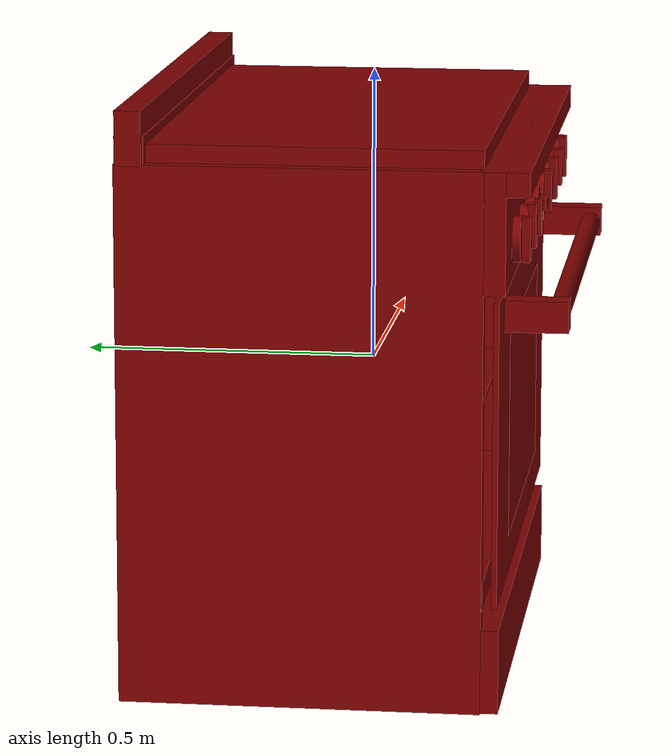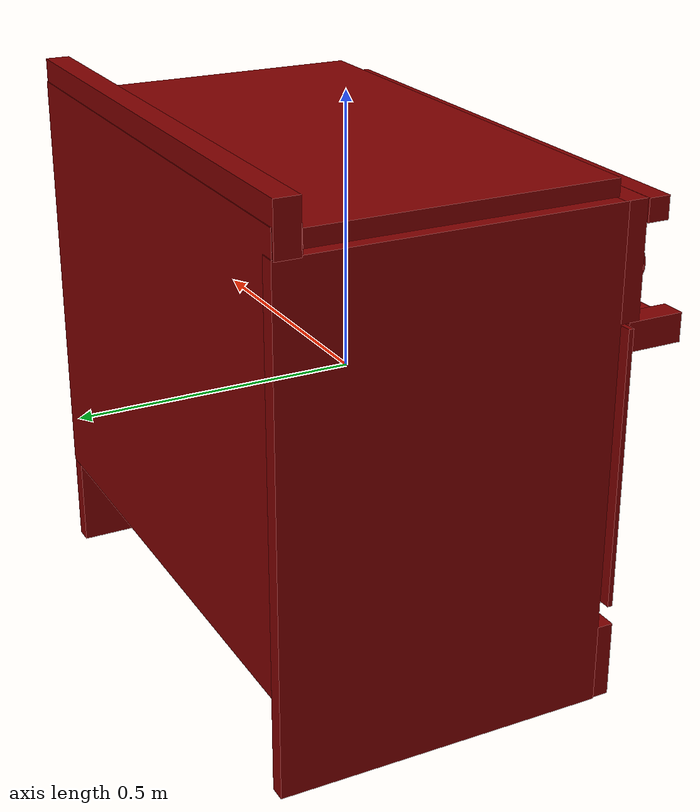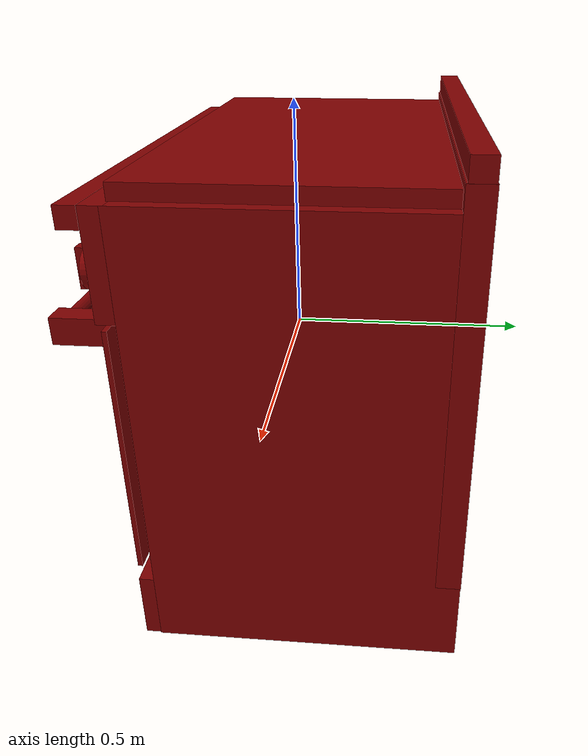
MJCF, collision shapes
<?xml version='1.0' encoding='UTF-8'?>
<mujoco model="model">
  <option timestep="0.002" gravity="0.0 0.0 -9.81"/>
  <compiler angle="radian"/>
  <asset>
    <mesh file="visuals/door.obj" name="door_vis"/>
    <mesh file="visuals/door_Clear.obj" name="door_Clear_vis"/>
    <mesh file="visuals/knob_front_center.obj" name="knob_front_center_vis"/>
    <mesh file="visuals/knob_front_left.obj" name="knob_front_left_vis"/>
    <mesh file="visuals/knob_front_right.obj" name="knob_front_right_vis"/>
    <mesh file="visuals/knob_rear_center.obj" name="knob_rear_center_vis"/>
    <mesh file="visuals/knob_rear_left.obj" name="knob_rear_left_vis"/>
    <mesh file="visuals/knob_rear_right.obj" name="knob_rear_right_vis"/>
    <mesh file="visuals/knob_temp.obj" name="knob_temp_vis"/>
    <mesh file="visuals/knob_time.obj" name="knob_time_vis"/>
    <mesh file="visuals/rack0.obj" name="rack0_vis"/>
    <mesh file="visuals/Body001.obj" name="Body001_vis"/>
    <texture file="visuals/T_BC001.png" name="Body001_material" type="2d"/>
    <material name="Body001_material" rgba="1 1 1 1.0" texture="Body001_material" shininess="0.4472135901451111" specular="1"/>
    <texture file="visuals/T_BC001.png" name="door_material" type="2d"/>
    <material name="door_material" rgba="1 1 1 1.0" texture="door_material" shininess="0.4472135901451111" specular="1"/>
    <texture file="visuals/T_BC001.png" name="door_Clear_material" type="2d"/>
    <material name="door_Clear_material" rgba="1 1 1 0.8" texture="door_Clear_material" shininess="0.4472135901451111" specular="1"/>
    <texture file="visuals/T_BC001.png" name="knob_front_center_material" type="2d"/>
    <material name="knob_front_center_material" rgba="1 1 1 1.0" texture="knob_front_center_material" shininess="0.4472135901451111" specular="1"/>
    <texture file="visuals/T_BC001.png" name="knob_front_left_material" type="2d"/>
    <material name="knob_front_left_material" rgba="1 1 1 1.0" texture="knob_front_left_material" shininess="0.4472135901451111" specular="1"/>
    <texture file="visuals/T_BC001.png" name="knob_front_right_material" type="2d"/>
    <material name="knob_front_right_material" rgba="1 1 1 1.0" texture="knob_front_right_material" shininess="0.4472135901451111" specular="1"/>
    <texture file="visuals/T_BC001.png" name="knob_rear_center_material" type="2d"/>
    <material name="knob_rear_center_material" rgba="1 1 1 1.0" texture="knob_rear_center_material" shininess="0.4472135901451111" specular="1"/>
    <texture file="visuals/T_BC001.png" name="knob_rear_left_material" type="2d"/>
    <material name="knob_rear_left_material" rgba="1 1 1 1.0" texture="knob_rear_left_material" shininess="0.4472135901451111" specular="1"/>
    <texture file="visuals/T_BC001.png" name="knob_rear_right_material" type="2d"/>
    <material name="knob_rear_right_material" rgba="1 1 1 1.0" texture="knob_rear_right_material" shininess="0.4472135901451111" specular="1"/>
    <texture file="visuals/T_BC001.png" name="knob_temp_material" type="2d"/>
    <material name="knob_temp_material" rgba="1 1 1 1.0" texture="knob_temp_material" shininess="0.4472135901451111" specular="1"/>
    <texture file="visuals/T_BC001.png" name="knob_time_material" type="2d"/>
    <material name="knob_time_material" rgba="1 1 1 1.0" texture="knob_time_material" shininess="0.4472135901451111" specular="1"/>
    <texture file="visuals/T_BC001.png" name="rack0_material" type="2d"/>
    <material name="rack0_material" rgba="1 1 1 1.0" texture="rack0_material" shininess="0.4472135901451111" specular="1"/>
  </asset>
  <default>
    <default class="visual">
      <geom conaffinity="0" contype="0" group="1" type="mesh"/>
    </default>
    <default class="collision">
      <geom group="0" rgba="0.5 0 0 0.5"/>
    </default>
    <default class="spawn">
      <geom group="0" rgba="1 1 1 0.5" contype="0" conaffinity="0"/>
      <site group="0" rgba="1 1 1 0.5"/>
    </default>
    <default class="region">
      <geom group="1" conaffinity="0" contype="0" rgba="0 1 0 0"/>
    </default>
  </default>
  <worldbody>
    <body>
      <body name="object">
        <geom mesh="Body001_vis" type="mesh" solimp="0.998 0.998 0.001" solref="0.001 1" friction="0.95 0.3 0.1" class="visual" material="Body001_material"/>
        <geom class="collision" type="box" pos="-0.00000040 0.06166940 -0.29818911" size="0.4734897017478943 0.292936235666275 0.02238655835390091" quat="1.0 0.0 0.0 0.0"/>
        <geom class="collision" type="box" pos="0.00182310 0.04703836 0.42210721" size="0.4634745717048645 0.2765425145626068 0.015197087079286575" quat="1.0 0.0 0.0 0.0"/>
        <geom class="collision" type="box" pos="-0.47135989 0.06774583 -0.04178975" size="0.014360162429511547 0.299012690782547 0.44883787631988525" quat="1.0 0.0 0.0 0.0"/>
        <geom class="collision" type="box" pos="0.00424909 0.34139909 0.06580656" size="0.4881504774093628 0.02380935288965702 0.3867793381214142" quat="1.0 0.0 0.0 0.0"/>
        <geom class="collision" type="box" pos="0.47593321 0.06655676 -0.04179010" size="0.016268758103251457 0.29792290925979614 0.4488382935523987" quat="1.0 0.0 0.0 0.0"/>
        <geom class="collision" type="box" pos="0.00321507 -0.21997534 -0.41791446" size="0.4885868430137634 0.04063500836491585 0.0703786239027977" quat="1.0 0.0 0.0 0.0"/>
        <geom class="collision" type="box" pos="0.00160956 0.34239675 0.44950013" size="0.49018722772598267 0.021507272496819496 0.04477667808532715" quat="1.0 0.0 0.0 0.0"/>
        <geom class="collision" type="box" pos="0.00321475 -0.24538921 0.30645161" size="0.48858678340911865 0.020799772813916206 0.10059786587953568" quat="1.0 0.0 0.0 0.0"/>
        <geom class="collision" type="box" pos="0.45716159 0.05411239 -0.09324733" size="0.014702280052006245 0.2272758036851883 0.013303576037287712" quat="1.0 0.0 0.0 0.0"/>
        <geom class="collision" type="box" pos="-0.44746213 0.05411239 -0.09324690" size="0.014702274464070797 0.2272758036851883 0.013303573243319988" quat="1.0 0.0 0.0 0.0"/>
        <geom class="collision" type="box" pos="-0.15331800 0.05174396 0.28792145" size="0.014702167361974716 0.2776675522327423 0.08096408098936081" quat="1.0 0.0 0.0 0.0"/>
        <geom class="collision" type="box" pos="0.00212803 -0.28573813 0.38707282" size="0.49051928520202637 0.019058873876929283 0.01997530832886696" quat="1.0 0.0 0.0 0.0"/>
        <geom class="collision" type="box" pos="0.16210516 0.05174396 0.28792145" size="0.01470217201858759 0.2776676118373871 0.08096402138471603" quat="1.0 0.0 0.0 0.0"/>
        <geom class="collision" type="box" pos="0.00321507 -0.19809811 -0.33490176" size="0.4885868430137634 0.018757784739136696 0.050876080989837646" quat="1.0 0.0 0.0 0.0"/>
        <body name="door">
          <joint axis="1.0 0.0 0.0" pos="0.00227608 -0.26381160 -0.33662448" limited="true" name="door_joint" range="0.0 1.5707963267948966" type="hinge" damping="1" frictionloss="1" armature=".01" stiffness="0.5" springref="-1"/>
          <geom mesh="door_vis" type="mesh" solimp="0.998 0.998 0.001" solref="0.001 1" friction="0.95 0.3 0.1" class="visual" material="door_material"/>
          <geom class="collision" type="box" pos="0.00362716 -0.25250636 -0.05812797" size="0.48967069387435913 0.004617785569280386 0.25291186571121216" quat="1.0 0.0 0.0 0.0" name="door_main"/>
          <geom class="collision" type="cylinder" pos="-0.00751982 -0.34869362 0.16923814" size="0.01760648936033249 0.41315340995788574" quat="0.7071068286895752 -0.0 0.7071067690849304 0.0" name="door_handle_main"/>
          <geom class="collision" type="box" pos="-0.44409688 -0.31524618 0.17068547" size="0.021696677431464195 0.051635123789310455 0.025740765035152435" quat="1.0 0.0 0.0 0.0"/>
          <geom class="collision" type="box" pos="0.43017979 -0.31524618 0.17068547" size="0.021696677431464195 0.051635123789310455 0.02574075199663639" quat="1.0 0.0 0.0 0.0"/>
          <geom class="collision" type="box" pos="0.00088766 -0.25980352 -0.06314106" size="0.3011172413825989 0.0008068492752499878 0.17353901267051697" quat="1.0 0.0 0.0 0.0"/>
          <body name="door_Clear">
            <geom mesh="door_Clear_vis" type="mesh" solimp="0.998 0.998 0.001" solref="0.001 1" friction="0.95 0.3 0.1" class="visual" material="door_Clear_material"/>
            <geom class="collision" type="box" pos="0.00088766 -0.25980352 -0.06314106" size="0.3011172413825989 0.0008068492752499878 0.17353901267051697" quat="1.0 0.0 0.0 0.0"/>
          </body>
        </body>
        <body name="knob_front_center">
          <joint axis="0.0 -1.0 0.0" pos="0.06342950 -0.27953707 0.28503548" limited="true" name="knob_front_center_joint" range="0.0 3.141592653589793" type="hinge" damping="0.05" frictionloss="0.75" armature="1"/>
          <geom mesh="knob_front_center_vis" type="mesh" solimp="0.998 0.998 0.001" solref="0.001 1" friction="0.95 0.3 0.1" class="visual" material="knob_front_center_material"/>
          <geom class="collision" type="cylinder" pos="0.06347358 -0.28137149 0.28509783" size="0.03594965115189552 0.006550677120685577" quat="0.7071067094802856 0.70710688829422 0.0 0.0" friction="100 0.5 0.01"/>
          <geom class="collision" type="box" pos="0.06307870 -0.29380001 0.28588961" size="0.03639558330178261 0.008072574622929096 0.01135251298546791" quat="0.7071068286895752 -0.0 0.7071067690849304 0.0" name="knob_front_center_main" friction="100 0.5 0.01"/>
        </body>
        <body name="knob_front_left">
          <joint axis="0.0 -1.0 0.0" pos="-0.42560022 -0.28206064 0.28954061" limited="true" name="knob_front_left_joint" range="0.0 3.141592653589793" type="hinge" damping="0.05" frictionloss="0.75" armature="1"/>
          <geom mesh="knob_front_left_vis" type="mesh" solimp="0.998 0.998 0.001" solref="0.001 1" friction="0.95 0.3 0.1" class="visual" material="knob_front_left_material"/>
          <geom class="collision" type="cylinder" pos="-0.42632811 -0.28058203 0.28974237" size="0.03757666423916817 0.006550677120685577" quat="0.7071067094802856 0.70710688829422 0.0 0.0" friction="100 0.5 0.01"/>
          <geom class="collision" type="box" pos="-0.42600693 -0.29380001 0.28993346" size="0.03639554977416992 0.008072574622929096 0.009832723066210747" quat="0.7071068286895752 -0.0 0.7071067690849304 0.0" name="knob_front_left_main" friction="100 0.5 0.01"/>
        </body>
        <body name="knob_front_right">
          <joint axis="0.0 -1.0 0.0" pos="0.43484201 -0.28206064 0.28578045" limited="true" name="knob_front_right_joint" range="0.0 3.141592653589793" type="hinge" damping="0.05" frictionloss="0.75" armature="1"/>
          <geom mesh="knob_front_right_vis" type="mesh" solimp="0.998 0.998 0.001" solref="0.001 1" friction="0.95 0.3 0.1" class="visual" material="knob_front_right_material"/>
          <geom class="collision" type="cylinder" pos="0.43485032 -0.28142048 0.28454049" size="0.03655795007944107 0.006550677120685577" quat="0.7071067094802856 0.70710688829422 0.0 0.0" friction="100 0.5 0.01"/>
          <geom class="collision" type="box" pos="0.43468447 -0.29380001 0.28633105" size="0.03639554977416992 0.008072574622929096 0.012125452049076557" quat="0.7071068286895752 -0.0 0.7071067690849304 0.0" name="knob_front_right_main" friction="100 0.5 0.01"/>
        </body>
        <body name="knob_rear_center">
          <joint axis="0.0 -1.0 0.0" pos="0.18854211 -0.28206064 0.28544595" limited="true" name="knob_rear_center_joint" range="0.0 3.141592653589793" type="hinge" damping="0.05" frictionloss="0.75" armature="1"/>
          <geom mesh="knob_rear_center_vis" type="mesh" solimp="0.998 0.998 0.001" solref="0.001 1" friction="0.95 0.3 0.1" class="visual" material="knob_rear_center_material"/>
          <geom class="collision" type="cylinder" pos="0.18838505 -0.28066070 0.28553744" size="0.03566603362560272 0.006550677120685577" quat="0.7071067094802856 0.70710688829422 0.0 0.0" friction="100 0.5 0.01"/>
          <geom class="collision" type="box" pos="0.18841310 -0.29380001 0.28685920" size="0.03639557212591171 0.008072574622929096 0.011259686201810837" quat="0.7071068286895752 -0.0 0.7071067690849304 0.0" name="knob_rear_center_main" friction="100 0.5 0.01"/>
        </body>
        <body name="knob_rear_left">
          <joint axis="0.0 -1.0 0.0" pos="-0.29852946 -0.28206064 0.28954061" limited="true" name="knob_rear_left_joint" range="0.0 3.141592653589793" type="hinge" damping="0.05" frictionloss="0.75" armature="1"/>
          <geom mesh="knob_rear_left_vis" type="mesh" solimp="0.998 0.998 0.001" solref="0.001 1" friction="0.95 0.3 0.1" class="visual" material="knob_rear_left_material"/>
          <geom class="collision" type="cylinder" pos="-0.29863776 -0.28147294 0.28974237" size="0.03489376977086067 0.006550677120685577" quat="0.7071067094802856 0.70710688829422 0.0 0.0" friction="100 0.5 0.01"/>
          <geom class="collision" type="box" pos="-0.29855199 -0.29380001 0.28915118" size="0.03639554977416992 0.008072574622929096 0.010995949618518353" quat="0.7071068286895752 -0.0 0.7071067690849304 0.0" name="knob_rear_left_main" friction="100 0.5 0.01"/>
        </body>
        <body name="knob_rear_right">
          <joint axis="0.0 -1.0 0.0" pos="0.31234227 -0.28206064 0.28578045" limited="true" name="knob_rear_right_joint" range="0.0 3.141592653589793" type="hinge" damping="0.05" frictionloss="0.75" armature="1"/>
          <geom mesh="knob_rear_right_vis" type="mesh" solimp="0.998 0.998 0.001" solref="0.001 1" friction="0.95 0.3 0.1" class="visual" material="knob_rear_right_material"/>
          <geom class="collision" type="cylinder" pos="0.31246121 -0.28107949 0.28556227" size="0.03535214811563492 0.006550677120685577" quat="0.7071067094802856 0.70710688829422 0.0 0.0" friction="100 0.5 0.01"/>
          <geom class="collision" type="box" pos="0.31206973 -0.29380001 0.28633474" size="0.032991424202919006 0.008072574622929096 0.011654136702418327" quat="0.7071068286895752 -0.0 0.7071067690849304 0.0" name="knob_rear_right_main" friction="100 0.5 0.01"/>
        </body>
        <body name="knob_temp">
          <joint axis="0.0 1.0 0.0" pos="-0.05947402 -0.27953710 0.28436707" limited="true" name="knob_temp_joint" range="0.0 3.2288591161895095" type="hinge" damping="0.05" frictionloss="0.75" armature="1"/>
          <geom mesh="knob_temp_vis" type="mesh" solimp="0.998 0.998 0.001" solref="0.001 1" friction="0.95 0.3 0.1" class="visual" material="knob_temp_material"/>
          <geom class="collision" type="cylinder" pos="-0.05983960 -0.28071035 0.28406014" size="0.03162483498454094 0.006550677120685577" quat="0.7071067094802856 0.70710688829422 0.0 0.0" friction="100 0.5 0.01"/>
          <geom class="collision" type="box" pos="-0.05976460 -0.29547717 0.28521480" size="0.00951886922121048 0.006395428441464901 0.030238952487707138" quat="0.7071068286895752 -0.0 0.7071067690849304 0.0" name="knob_temp_main" friction="100 0.5 0.01"/>
        </body>
        <body name="knob_time">
          <joint axis="0.0 1.0 0.0" pos="-0.18080817 -0.27953710 0.28419771" limited="true" name="knob_time_joint" range="0.0 4.101523742186674" type="hinge" damping="0.05" frictionloss="0.75" armature="1"/>
          <geom mesh="knob_time_vis" type="mesh" solimp="0.998 0.998 0.001" solref="0.001 1" friction="0.95 0.3 0.1" class="visual" material="knob_time_material"/>
          <geom class="collision" type="cylinder" pos="-0.18082908 -0.28160621 0.28404235" size="0.031847357749938965 0.006550677120685577" quat="0.7071067094802856 0.70710688829422 0.0 0.0" friction="100 0.5 0.01"/>
          <geom class="collision" type="box" pos="-0.18159474 -0.29547717 0.28360193" size="0.030238941311836243 0.006395428441464901 0.009580874815583229" quat="0.7071068286895752 -0.0 0.7071067690849304 0.0" name="knob_time_main" friction="100 0.5 0.01"/>
        </body>
        <body name="rack0">
          <geom class="region" name="reg_rack0" type="box" pos="0.004817385000000007 0.01540701500000001 0.06528439500000001" size="0.436020625 0.201939245 0.13994182500000002"/>
          <joint axis="0.0 -1.0 0.0" pos="0.00378870 0.01546801 -0.07941599" limited="true" name="rack0_joint" range="0.0 0.35" type="slide" damping="1" frictionloss="1" armature=".01" stiffness="0.05"/>
          <geom mesh="rack0_vis" type="mesh" solimp="0.998 0.998 0.001" solref="0.001 1" friction="0.95 0.3 0.1" class="visual" material="rack0_material"/>
          <geom class="collision" type="box" pos="0.00471125 0.01496669 -0.07934826" size="0.4363490641117096 0.20542235672473907 0.0034588007256388664" quat="1.0 0.0 0.0 0.0"/>
        </body>
        <site type="cylinder" rgba="0.3 0.4 1 0.5" size="0.07348936051130295 0.0148638766258955" pos="0.00517109 -0.08416893 0.41500439" name="burner_on_front_center"/>
        <site type="cylinder" rgba="0.3 0.4 1 0.5" size="0.04229027032852173 0.014863877557218075" pos="-0.31377168 -0.08421256 0.41500439" name="burner_on_front_left"/>
        <site type="cylinder" rgba="0.3 0.4 1 0.5" size="0.0517921969294548 0.014863877557218075" pos="0.31551491 -0.08408846 0.41500439" name="burner_on_front_right"/>
        <site type="cylinder" rgba="0.3 0.4 1 0.5" size="0.08612119406461716 0.0148638766258955" pos="0.00511148 0.17948052 0.41500439" name="burner_on_rear_center"/>
        <site type="cylinder" rgba="0.3 0.4 1 0.5" size="0.052564289420843124 0.0148638766258955" pos="-0.31381459 0.17946149 0.41500439" name="burner_on_rear_left"/>
        <site type="cylinder" rgba="0.3 0.4 1 0.5" size="0.040556829422712326 0.0148638766258955" pos="0.31559686 0.17950855 0.41500439" name="burner_on_rear_right"/>
        <geom class="region" name="reg_int" type="box" pos="0.004777759999999992 0.04371992000000001 -0.03309537500000001" size="0.43333933 0.26959392 0.23813325500000002"/>
        <site type="cylinder" rgba="0.5 0 0 0" size="0.07348936051130295 4.999999873689376e-05" pos="0.00517109 -0.08416893 0.43735348" name="burner_front_center_place_site"/>
        <site type="cylinder" rgba="0.5 0 0 0" size="0.04229027032852173 4.999999873689376e-05" pos="-0.31377168 -0.08421256 0.43735348" name="burner_front_left_place_site"/>
        <site type="cylinder" rgba="0.5 0 0 0" size="0.0517921969294548 4.999999873689376e-05" pos="0.31551491 -0.08408846 0.43735348" name="burner_front_right_place_site"/>
        <site type="cylinder" rgba="0.5 0 0 0" size="0.08612119406461716 4.999999873689376e-05" pos="0.00511148 0.17948052 0.43735348" name="burner_rear_center_place_site"/>
        <site type="cylinder" rgba="0.5 0 0 0" size="0.052564289420843124 4.999999873689376e-05" pos="-0.31381459 0.17946149 0.43735348" name="burner_rear_left_place_site"/>
        <site type="cylinder" rgba="0.5 0 0 0" size="0.040556829422712326 4.999999873689376e-05" pos="0.31559686 0.17950855 0.43735348" name="burner_rear_right_place_site"/>
        <geom class="region" name="reg_main" type="box" pos="0.0019150250000000146 0.050287499999999985 -0.043614244999999996" size="0.493806315 0.31759389 0.451662315"/>
      </body>
    </body>
  </worldbody>
  <actuator>
    <motor name="door_joint_actuator" joint="door_joint" gear="50"/>
    <motor name="knob_front_center_joint_actuator" joint="knob_front_center_joint" gear="50"/>
    <motor name="knob_front_left_joint_actuator" joint="knob_front_left_joint" gear="50"/>
    <motor name="knob_front_right_joint_actuator" joint="knob_front_right_joint" gear="50"/>
    <motor name="knob_rear_center_joint_actuator" joint="knob_rear_center_joint" gear="50"/>
    <motor name="knob_rear_left_joint_actuator" joint="knob_rear_left_joint" gear="50"/>
    <motor name="knob_rear_right_joint_actuator" joint="knob_rear_right_joint" gear="50"/>
    <motor name="knob_temp_joint_actuator" joint="knob_temp_joint" gear="50"/>
    <motor name="knob_time_joint_actuator" joint="knob_time_joint" gear="50"/>
    <motor name="rack0_joint_actuator" joint="rack0_joint" gear="50"/>
  </actuator>
</mujoco>
